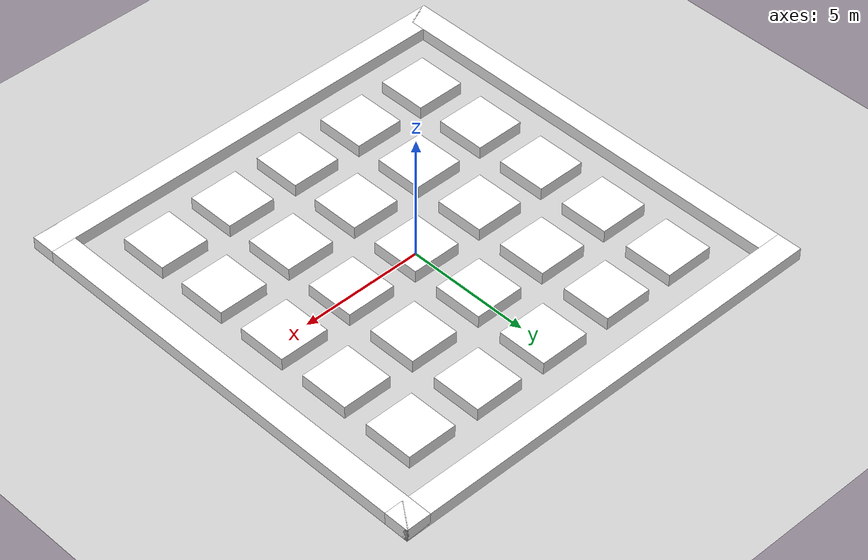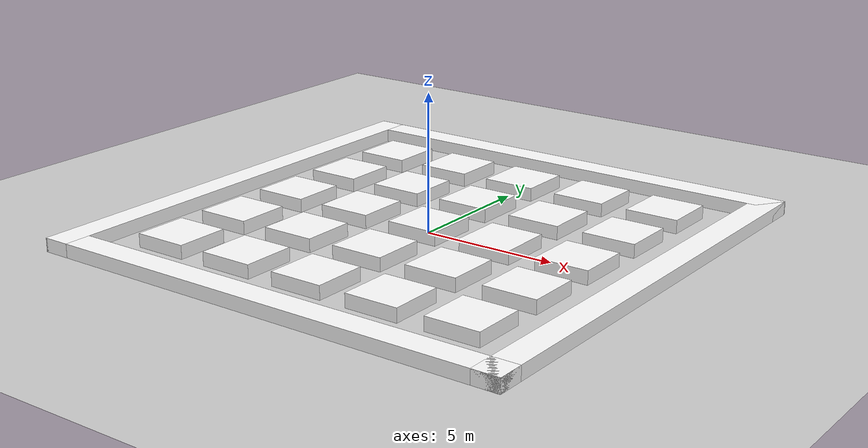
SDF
<sdf version='1.6'>
  <world name='default'>
    <!-- A global light source -->
    <include>
      <uri>model://sun</uri>
    </include>

    <!-- A ground plane -->
    <include>
      <uri>model://ground_plane</uri>
    </include>

    <physics type="ode">
      <!-- Set to 100.0 for normal speed: -->
      <real_time_update_rate>100.0</real_time_update_rate>
      <max_step_size>0.01</max_step_size>
      <real_time_factor>0.5</real_time_factor>
      <ode>
        <solver>
          <type>quick</type>
          <iters>150</iters>
          <precon_iters>0</precon_iters>
          <sor>1.400000</sor>
          <use_dynamic_moi_rescaling>1</use_dynamic_moi_rescaling>
        </solver>
        <constraints>
          <cfm>0.00001</cfm>
          <erp>0.2</erp>
          <contact_max_correcting_vel>2000.000000</contact_max_correcting_vel>
          <contact_surface_layer>0.01000</contact_surface_layer>
        </constraints>
      </ode>
    </physics>

    <!-- Load world -->
    <include>
      <uri>model://project_world</uri>
    </include>

    <scene>
      <ambient>0.4 0.4 0.4 1</ambient>
      <background>0.7 0.7 0.7 1</background>
      <shadows>false</shadows>
    </scene>

    <gui fullscreen='0'>
      <camera name='user_camera'>
        <pose>0.8 0.0 12.0 0 1.5708 0</pose>
        <view_controller>orbit</view_controller>
      </camera>
    </gui>
  </world>
</sdf>

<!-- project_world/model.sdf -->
<sdf version="1.6">
  <!--Generated City-->
  <model name="city">
    <pose frame="">0 0 0 0 -0 0</pose>
    <link name="Wall_0_0">
      <collision name="Wall_0_0_Collision">
        <geometry>
          <box>
            <size>1.0 18.3333333333 0.5</size>
          </box>
        </geometry>
        <pose frame="">0 0 0 0 -0 0</pose>
      </collision>
      <visual name="Wall_0_0_Visual">
        <pose frame="">0 0 0 0 -0 0</pose>
        <geometry>
          <box>
            <size>1.0 18.3333333333 0.5</size>
          </box>
        </geometry>
        <material>
          <ambient>1 1 1 1</ambient>
        </material>
      </visual>
      <pose frame="">-8.66666666667 0.0 0.25 0 -0 0</pose>
    </link>
    <link name="Wall_0_1">
      <collision name="Wall_0_1_Collision">
        <geometry>
          <box>
            <size>18.3333333333 1.0 0.5</size>
          </box>
        </geometry>
        <pose frame="">0 0 0 0 -0 0</pose>
      </collision>
      <visual name="Wall_0_1_Visual">
        <pose frame="">0 0 0 0 -0 0</pose>
        <geometry>
          <box>
            <size>18.3333333333 1.0 0.5</size>
          </box>
        </geometry>
        <material>
          <ambient>1 1 1 1</ambient>
        </material>
      </visual>
      <pose frame="">0.0 -8.66666666667 0.25 0 -0 0</pose>
    </link>
    <link name="Wall_1_0">
      <collision name="Wall_1_0_Collision">
        <geometry>
          <box>
            <size>18.3333333333 1.0 0.5</size>
          </box>
        </geometry>
        <pose frame="">0 0 0 0 -0 0</pose>
      </collision>
      <visual name="Wall_1_0_Visual">
        <pose frame="">0 0 0 0 -0 0</pose>
        <geometry>
          <box>
            <size>18.3333333333 1.0 0.5</size>
          </box>
        </geometry>
        <material>
          <ambient>1 1 1 1</ambient>
        </material>
      </visual>
      <pose frame="">0.0 8.66666666667 0.25 0 -0 0</pose>
    </link>
    <link name="Wall_1_1">
      <collision name="Wall_1_1_Collision">
        <geometry>
          <box>
            <size>1.0 18.3333333333 0.5</size>
          </box>
        </geometry>
        <pose frame="">0 0 0 0 -0 0</pose>
      </collision>
      <visual name="Wall_1_1_Visual">
        <pose frame="">0 0 0 0 -0 0</pose>
        <geometry>
          <box>
            <size>1.0 18.3333333333 0.5</size>
          </box>
        </geometry>
        <material>
          <ambient>1 1 1 1</ambient>
        </material>
      </visual>
      <pose frame="">8.66666666667 0.0 0.25 0 -0 0</pose>
    </link>
    <link name="Box_-6_-6">
      <collision name="Box_-6_-6_Collision">
        <geometry>
          <box>
            <size>2 2 0.5</size>
          </box>
        </geometry>
        <pose frame="">0 0 0 0 -0 0</pose>
      </collision>
      <visual name="Box_-6_-6_Visual">
        <pose frame="">0 0 0 0 -0 0</pose>
        <geometry>
          <box>
            <size>2 2 0.5</size>
          </box>
        </geometry>
        <material>
          <ambient>1 1 1 1</ambient>
        </material>
      </visual>
      <pose frame="">-6 -6 0.25 0 -0 0</pose>
    </link>
    <link name="Box_-6_-3">
      <collision name="Box_-6_-3_Collision">
        <geometry>
          <box>
            <size>2 2 0.5</size>
          </box>
        </geometry>
        <pose frame="">0 0 0 0 -0 0</pose>
      </collision>
      <visual name="Box_-6_-3_Visual">
        <pose frame="">0 0 0 0 -0 0</pose>
        <geometry>
          <box>
            <size>2 2 0.5</size>
          </box>
        </geometry>
        <material>
          <ambient>1 1 1 1</ambient>
        </material>
      </visual>
      <pose frame="">-6 -3 0.25 0 -0 0</pose>
    </link>
    <link name="Box_-6_0">
      <collision name="Box_-6_0_Collision">
        <geometry>
          <box>
            <size>2 2 0.5</size>
          </box>
        </geometry>
        <pose frame="">0 0 0 0 -0 0</pose>
      </collision>
      <visual name="Box_-6_0_Visual">
        <pose frame="">0 0 0 0 -0 0</pose>
        <geometry>
          <box>
            <size>2 2 0.5</size>
          </box>
        </geometry>
        <material>
          <ambient>1 1 1 1</ambient>
        </material>
      </visual>
      <pose frame="">-6 0 0.25 0 -0 0</pose>
    </link>
    <link name="Box_-6_3">
      <collision name="Box_-6_3_Collision">
        <geometry>
          <box>
            <size>2 2 0.5</size>
          </box>
        </geometry>
        <pose frame="">0 0 0 0 -0 0</pose>
      </collision>
      <visual name="Box_-6_3_Visual">
        <pose frame="">0 0 0 0 -0 0</pose>
        <geometry>
          <box>
            <size>2 2 0.5</size>
          </box>
        </geometry>
        <material>
          <ambient>1 1 1 1</ambient>
        </material>
      </visual>
      <pose frame="">-6 3 0.25 0 -0 0</pose>
    </link>
    <link name="Box_-6_6">
      <collision name="Box_-6_6_Collision">
        <geometry>
          <box>
            <size>2 2 0.5</size>
          </box>
        </geometry>
        <pose frame="">0 0 0 0 -0 0</pose>
      </collision>
      <visual name="Box_-6_6_Visual">
        <pose frame="">0 0 0 0 -0 0</pose>
        <geometry>
          <box>
            <size>2 2 0.5</size>
          </box>
        </geometry>
        <material>
          <ambient>1 1 1 1</ambient>
        </material>
      </visual>
      <pose frame="">-6 6 0.25 0 -0 0</pose>
    </link>
    <link name="Box_-3_-6">
      <collision name="Box_-3_-6_Collision">
        <geometry>
          <box>
            <size>2 2 0.5</size>
          </box>
        </geometry>
        <pose frame="">0 0 0 0 -0 0</pose>
      </collision>
      <visual name="Box_-3_-6_Visual">
        <pose frame="">0 0 0 0 -0 0</pose>
        <geometry>
          <box>
            <size>2 2 0.5</size>
          </box>
        </geometry>
        <material>
          <ambient>1 1 1 1</ambient>
        </material>
      </visual>
      <pose frame="">-3 -6 0.25 0 -0 0</pose>
    </link>
    <link name="Box_-3_-3">
      <collision name="Box_-3_-3_Collision">
        <geometry>
          <box>
            <size>2 2 0.5</size>
          </box>
        </geometry>
        <pose frame="">0 0 0 0 -0 0</pose>
      </collision>
      <visual name="Box_-3_-3_Visual">
        <pose frame="">0 0 0 0 -0 0</pose>
        <geometry>
          <box>
            <size>2 2 0.5</size>
          </box>
        </geometry>
        <material>
          <ambient>1 1 1 1</ambient>
        </material>
      </visual>
      <pose frame="">-3 -3 0.25 0 -0 0</pose>
    </link>
    <link name="Box_-3_0">
      <collision name="Box_-3_0_Collision">
        <geometry>
          <box>
            <size>2 2 0.5</size>
          </box>
        </geometry>
        <pose frame="">0 0 0 0 -0 0</pose>
      </collision>
      <visual name="Box_-3_0_Visual">
        <pose frame="">0 0 0 0 -0 0</pose>
        <geometry>
          <box>
            <size>2 2 0.5</size>
          </box>
        </geometry>
        <material>
          <ambient>1 1 1 1</ambient>
        </material>
      </visual>
      <pose frame="">-3 0 0.25 0 -0 0</pose>
    </link>
    <link name="Box_-3_3">
      <collision name="Box_-3_3_Collision">
        <geometry>
          <box>
            <size>2 2 0.5</size>
          </box>
        </geometry>
        <pose frame="">0 0 0 0 -0 0</pose>
      </collision>
      <visual name="Box_-3_3_Visual">
        <pose frame="">0 0 0 0 -0 0</pose>
        <geometry>
          <box>
            <size>2 2 0.5</size>
          </box>
        </geometry>
        <material>
          <ambient>1 1 1 1</ambient>
        </material>
      </visual>
      <pose frame="">-3 3 0.25 0 -0 0</pose>
    </link>
    <link name="Box_-3_6">
      <collision name="Box_-3_6_Collision">
        <geometry>
          <box>
            <size>2 2 0.5</size>
          </box>
        </geometry>
        <pose frame="">0 0 0 0 -0 0</pose>
      </collision>
      <visual name="Box_-3_6_Visual">
        <pose frame="">0 0 0 0 -0 0</pose>
        <geometry>
          <box>
            <size>2 2 0.5</size>
          </box>
        </geometry>
        <material>
          <ambient>1 1 1 1</ambient>
        </material>
      </visual>
      <pose frame="">-3 6 0.25 0 -0 0</pose>
    </link>
    <link name="Box_0_-6">
      <collision name="Box_0_-6_Collision">
        <geometry>
          <box>
            <size>2 2 0.5</size>
          </box>
        </geometry>
        <pose frame="">0 0 0 0 -0 0</pose>
      </collision>
      <visual name="Box_0_-6_Visual">
        <pose frame="">0 0 0 0 -0 0</pose>
        <geometry>
          <box>
            <size>2 2 0.5</size>
          </box>
        </geometry>
        <material>
          <ambient>1 1 1 1</ambient>
        </material>
      </visual>
      <pose frame="">0 -6 0.25 0 -0 0</pose>
    </link>
    <link name="Box_0_-3">
      <collision name="Box_0_-3_Collision">
        <geometry>
          <box>
            <size>2 2 0.5</size>
          </box>
        </geometry>
        <pose frame="">0 0 0 0 -0 0</pose>
      </collision>
      <visual name="Box_0_-3_Visual">
        <pose frame="">0 0 0 0 -0 0</pose>
        <geometry>
          <box>
            <size>2 2 0.5</size>
          </box>
        </geometry>
        <material>
          <ambient>1 1 1 1</ambient>
        </material>
      </visual>
      <pose frame="">0 -3 0.25 0 -0 0</pose>
    </link>
    <link name="Box_0_0">
      <collision name="Box_0_0_Collision">
        <geometry>
          <box>
            <size>2 2 0.5</size>
          </box>
        </geometry>
        <pose frame="">0 0 0 0 -0 0</pose>
      </collision>
      <visual name="Box_0_0_Visual">
        <pose frame="">0 0 0 0 -0 0</pose>
        <geometry>
          <box>
            <size>2 2 0.5</size>
          </box>
        </geometry>
        <material>
          <ambient>1 1 1 1</ambient>
        </material>
      </visual>
      <pose frame="">0 0 0.25 0 -0 0</pose>
    </link>
    <link name="Box_0_3">
      <collision name="Box_0_3_Collision">
        <geometry>
          <box>
            <size>2 2 0.5</size>
          </box>
        </geometry>
        <pose frame="">0 0 0 0 -0 0</pose>
      </collision>
      <visual name="Box_0_3_Visual">
        <pose frame="">0 0 0 0 -0 0</pose>
        <geometry>
          <box>
            <size>2 2 0.5</size>
          </box>
        </geometry>
        <material>
          <ambient>1 1 1 1</ambient>
        </material>
      </visual>
      <pose frame="">0 3 0.25 0 -0 0</pose>
    </link>
    <link name="Box_0_6">
      <collision name="Box_0_6_Collision">
        <geometry>
          <box>
            <size>2 2 0.5</size>
          </box>
        </geometry>
        <pose frame="">0 0 0 0 -0 0</pose>
      </collision>
      <visual name="Box_0_6_Visual">
        <pose frame="">0 0 0 0 -0 0</pose>
        <geometry>
          <box>
            <size>2 2 0.5</size>
          </box>
        </geometry>
        <material>
          <ambient>1 1 1 1</ambient>
        </material>
      </visual>
      <pose frame="">0 6 0.25 0 -0 0</pose>
    </link>
    <link name="Box_3_-6">
      <collision name="Box_3_-6_Collision">
        <geometry>
          <box>
            <size>2 2 0.5</size>
          </box>
        </geometry>
        <pose frame="">0 0 0 0 -0 0</pose>
      </collision>
      <visual name="Box_3_-6_Visual">
        <pose frame="">0 0 0 0 -0 0</pose>
        <geometry>
          <box>
            <size>2 2 0.5</size>
          </box>
        </geometry>
        <material>
          <ambient>1 1 1 1</ambient>
        </material>
      </visual>
      <pose frame="">3 -6 0.25 0 -0 0</pose>
    </link>
    <link name="Box_3_-3">
      <collision name="Box_3_-3_Collision">
        <geometry>
          <box>
            <size>2 2 0.5</size>
          </box>
        </geometry>
        <pose frame="">0 0 0 0 -0 0</pose>
      </collision>
      <visual name="Box_3_-3_Visual">
        <pose frame="">0 0 0 0 -0 0</pose>
        <geometry>
          <box>
            <size>2 2 0.5</size>
          </box>
        </geometry>
        <material>
          <ambient>1 1 1 1</ambient>
        </material>
      </visual>
      <pose frame="">3 -3 0.25 0 -0 0</pose>
    </link>
    <link name="Box_3_0">
      <collision name="Box_3_0_Collision">
        <geometry>
          <box>
            <size>2 2 0.5</size>
          </box>
        </geometry>
        <pose frame="">0 0 0 0 -0 0</pose>
      </collision>
      <visual name="Box_3_0_Visual">
        <pose frame="">0 0 0 0 -0 0</pose>
        <geometry>
          <box>
            <size>2 2 0.5</size>
          </box>
        </geometry>
        <material>
          <ambient>1 1 1 1</ambient>
        </material>
      </visual>
      <pose frame="">3 0 0.25 0 -0 0</pose>
    </link>
    <link name="Box_3_3">
      <collision name="Box_3_3_Collision">
        <geometry>
          <box>
            <size>2 2 0.5</size>
          </box>
        </geometry>
        <pose frame="">0 0 0 0 -0 0</pose>
      </collision>
      <visual name="Box_3_3_Visual">
        <pose frame="">0 0 0 0 -0 0</pose>
        <geometry>
          <box>
            <size>2 2 0.5</size>
          </box>
        </geometry>
        <material>
          <ambient>1 1 1 1</ambient>
        </material>
      </visual>
      <pose frame="">3 3 0.25 0 -0 0</pose>
    </link>
    <link name="Box_3_6">
      <collision name="Box_3_6_Collision">
        <geometry>
          <box>
            <size>2 2 0.5</size>
          </box>
        </geometry>
        <pose frame="">0 0 0 0 -0 0</pose>
      </collision>
      <visual name="Box_3_6_Visual">
        <pose frame="">0 0 0 0 -0 0</pose>
        <geometry>
          <box>
            <size>2 2 0.5</size>
          </box>
        </geometry>
        <material>
          <ambient>1 1 1 1</ambient>
        </material>
      </visual>
      <pose frame="">3 6 0.25 0 -0 0</pose>
    </link>
    <link name="Box_6_-6">
      <collision name="Box_6_-6_Collision">
        <geometry>
          <box>
            <size>2 2 0.5</size>
          </box>
        </geometry>
        <pose frame="">0 0 0 0 -0 0</pose>
      </collision>
      <visual name="Box_6_-6_Visual">
        <pose frame="">0 0 0 0 -0 0</pose>
        <geometry>
          <box>
            <size>2 2 0.5</size>
          </box>
        </geometry>
        <material>
          <ambient>1 1 1 1</ambient>
        </material>
      </visual>
      <pose frame="">6 -6 0.25 0 -0 0</pose>
    </link>
    <link name="Box_6_-3">
      <collision name="Box_6_-3_Collision">
        <geometry>
          <box>
            <size>2 2 0.5</size>
          </box>
        </geometry>
        <pose frame="">0 0 0 0 -0 0</pose>
      </collision>
      <visual name="Box_6_-3_Visual">
        <pose frame="">0 0 0 0 -0 0</pose>
        <geometry>
          <box>
            <size>2 2 0.5</size>
          </box>
        </geometry>
        <material>
          <ambient>1 1 1 1</ambient>
        </material>
      </visual>
      <pose frame="">6 -3 0.25 0 -0 0</pose>
    </link>
    <link name="Box_6_0">
      <collision name="Box_6_0_Collision">
        <geometry>
          <box>
            <size>2 2 0.5</size>
          </box>
        </geometry>
        <pose frame="">0 0 0 0 -0 0</pose>
      </collision>
      <visual name="Box_6_0_Visual">
        <pose frame="">0 0 0 0 -0 0</pose>
        <geometry>
          <box>
            <size>2 2 0.5</size>
          </box>
        </geometry>
        <material>
          <ambient>1 1 1 1</ambient>
        </material>
      </visual>
      <pose frame="">6 0 0.25 0 -0 0</pose>
    </link>
    <link name="Box_6_3">
      <collision name="Box_6_3_Collision">
        <geometry>
          <box>
            <size>2 2 0.5</size>
          </box>
        </geometry>
        <pose frame="">0 0 0 0 -0 0</pose>
      </collision>
      <visual name="Box_6_3_Visual">
        <pose frame="">0 0 0 0 -0 0</pose>
        <geometry>
          <box>
            <size>2 2 0.5</size>
          </box>
        </geometry>
        <material>
          <ambient>1 1 1 1</ambient>
        </material>
      </visual>
      <pose frame="">6 3 0.25 0 -0 0</pose>
    </link>
    <link name="Box_6_6">
      <collision name="Box_6_6_Collision">
        <geometry>
          <box>
            <size>2 2 0.5</size>
          </box>
        </geometry>
        <pose frame="">0 0 0 0 -0 0</pose>
      </collision>
      <visual name="Box_6_6_Visual">
        <pose frame="">0 0 0 0 -0 0</pose>
        <geometry>
          <box>
            <size>2 2 0.5</size>
          </box>
        </geometry>
        <material>
          <ambient>1 1 1 1</ambient>
        </material>
      </visual>
      <pose frame="">6 6 0.25 0 -0 0</pose>
    </link>
    <static>1</static>
  </model>
</sdf>
